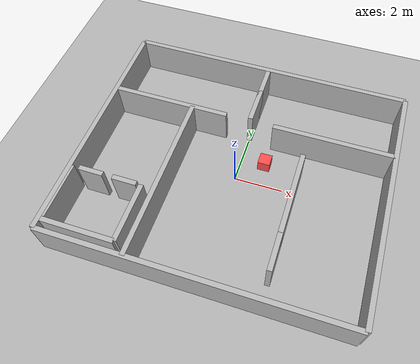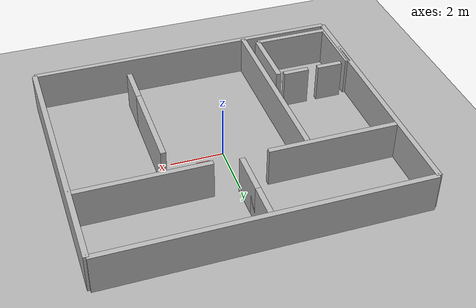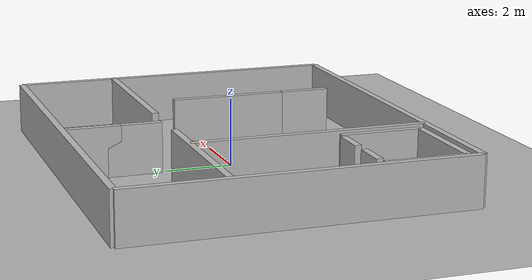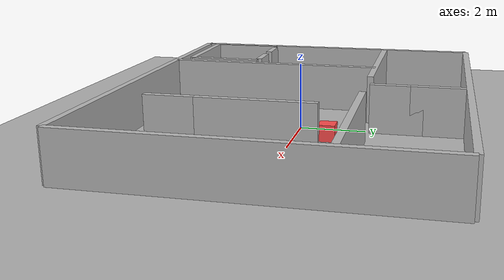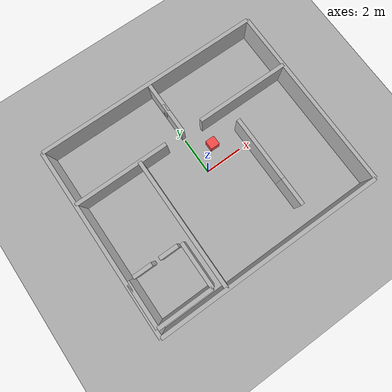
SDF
<?xml version="1.0" ?>
<sdf version="1.7">
  <world name="nav_world">

    <physics name='1ms' type='ignored'>
      <max_step_size>0.001</max_step_size>
      <real_time_factor>1</real_time_factor>
    </physics>

    <plugin
        filename="ignition-gazebo-physics-system"
        name="ignition::gazebo::systems::Physics">
    </plugin>
    <plugin
        filename="ignition-gazebo-user-commands-system"
        name="ignition::gazebo::systems::UserCommands">
    </plugin>
    <plugin
        filename="ignition-gazebo-scene-broadcaster-system"
        name="ignition::gazebo::systems::SceneBroadcaster">
    </plugin>
    <plugin
        filename="ignition-gazebo-sensors-system"
        name="ignition::gazebo::systems::Sensors">
        <render_engine>ogre2</render_engine>
    </plugin>
    <plugin
        filename="ignition-gazebo-contact-system"
        name="ignition::gazebo::systems::Contact">
    </plugin>
    <plugin filename="gz-sim-imu-system"
            name="gz::sim::systems::Imu">
    </plugin>

    <!-- 基本光源 -->
    <light name="sun" type="directional">
      <cast_shadows>true</cast_shadows>
      <pose>0 0 10 0 0 0</pose>
      <diffuse>1 1 1 1</diffuse>
      <specular>0.1 0.1 0.1 1</specular>
      <direction>-0.5 0.5 -1</direction>
    </light>

    <!-- 地面（自定义 plane，非 Fuel） -->
    <model name="ground_plane">
      <static>true</static>
      <link name="ground_link">
        <collision name="ground_collision">
          <geometry>
            <plane>
              <normal>0 0 1</normal>
              <size>20 20</size>
            </plane>
          </geometry>
        </collision>
        <visual name="ground_visual">
          <geometry>
            <plane>
              <normal>0 0 1</normal>
              <size>20 20</size>
            </plane>
          </geometry>
          <material>
            <ambient>0.5 0.5 0.5 1</ambient>
            <diffuse>0.7 0.7 0.7 1</diffuse>
          </material>
        </visual>
      </link>
    </model>

    <!-- 多房间布局（外墙 12x10，墙厚0.2，高1.5） -->
    <model name="complex_rooms_v3">
      <static>true</static>

      <!-- 外墙 -->
      <link name="outer_east">
        <pose>6 0 0.75 0 0 0</pose>
        <collision name="c"><geometry><box><size>0.2 10 1.5</size></box></geometry></collision>
        <visual name="v"><geometry><box><size>0.2 10 1.5</size></box></geometry></visual>
      </link>
      <link name="outer_west">
        <pose>-6 0 0.75 0 0 0</pose>
        <collision name="c"><geometry><box><size>0.2 10 1.5</size></box></geometry></collision>
        <visual name="v"><geometry><box><size>0.2 10 1.5</size></box></geometry></visual>
      </link>
      <link name="outer_north">
        <pose>0 5 0.75 0 0 0</pose>
        <collision name="c"><geometry><box><size>12 0.2 1.5</size></box></geometry></collision>
        <visual name="v"><geometry><box><size>12 0.2 1.5</size></box></geometry></visual>
      </link>
      <link name="outer_south">
        <pose>0 -5 0.75 0 0 0</pose>
        <collision name="c"><geometry><box><size>12 0.2 1.5</size></box></geometry></collision>
        <visual name="v"><geometry><box><size>12 0.2 1.5</size></box></geometry></visual>
      </link>

      <!-- 横墙（y=2，留 2m 门洞，形成北侧大房） -->
      <link name="h_y2_left">
        <pose>-3.5 2 0.75 0 0 0</pose>
        <collision name="c"><geometry><box><size>5 0.2 1.5</size></box></geometry></collision>
        <visual name="v"><geometry><box><size>5 0.2 1.5</size></box></geometry></visual>
      </link>
      <link name="h_y2_right">
        <pose>3.5 2 0.75 0 0 0</pose>
        <collision name="c"><geometry><box><size>5 0.2 1.5</size></box></geometry></collision>
        <visual name="v"><geometry><box><size>5 0.2 1.5</size></box></geometry></visual>
      </link>

      <!-- 右侧纵墙（x=2.5），把南侧分成东/西两区；在 y∈[-2.5,-1.5] 留 1m 门 -->
      <link name="v_x2p5_low">
        <pose>2.5 -3.25 0.75 0 0 0</pose>
        <collision name="c"><geometry><box><size>0.2 1.5 1.5</size></box></geometry></collision>
        <visual name="v"><geometry><box><size>0.2 1.5 1.5</size></box></geometry></visual>
      </link>
      <link name="v_x2p5_high">
        <pose>2.5 -0.75 0.75 0 0 0</pose>
        <collision name="c"><geometry><box><size>0.2 3.5 1.5</size></box></geometry></collision>
        <visual name="v"><geometry><box><size>0.2 3.5 1.5</size></box></geometry></visual>
      </link>

      <!-- 左侧纵墙（x=-2.5），把南侧西区与中心走廊隔开 -->
      <link name="v_x-2p5_full">
        <pose>-2.5 -1.5 0.75 0 0 0</pose>
        <collision name="c"><geometry><box><size>0.2 7 1.5</size></box></geometry></collision>
        <visual name="v"><geometry><box><size>0.2 7 1.5</size></box></geometry></visual>
      </link>

      <!-- 西南角小房间（约 2.6x2.6），门开在北边（y=-2.2）留 0.8m 缝 -->
      <!-- 小房北墙分两段留门 -->
      <link name="h_sw_top_left">
        <pose>-5.1 -2.2 0.75 0 0 0</pose>
        <collision name="c"><geometry><box><size>1.0 0.2 1.5</size></box></geometry></collision>
        <visual name="v"><geometry><box><size>1.0 0.2 1.5</size></box></geometry></visual>
      </link>
      <link name="h_sw_top_right">
        <pose>-3.7 -2.2 0.75 0 0 0</pose>
        <collision name="c"><geometry><box><size>1.0 0.2 1.5</size></box></geometry></collision>
        <visual name="v"><geometry><box><size>1.0 0.2 1.5</size></box></geometry></visual>
      </link>
      <!-- 小房西墙（靠外墙，略内缩，避免与外墙重合） -->
      <link name="v_sw_west">
        <pose>-5.9 -3.4 0.75 0 0 0</pose>
        <collision name="c"><geometry><box><size>0.2 2.4 1.5</size></box></geometry></collision>
        <visual name="v"><geometry><box><size>0.2 2.4 1.5</size></box></geometry></visual>
      </link>
      <!-- 小房东墙 -->
      <link name="v_sw_east">
        <pose>-3.0 -3.4 0.75 0 0 0</pose>
        <collision name="c"><geometry><box><size>0.2 2.4 1.5</size></box></geometry></collision>
        <visual name="v"><geometry><box><size>0.2 2.4 1.5</size></box></geometry></visual>
      </link>
      <!-- 小房南墙 -->
      <link name="h_sw_south">
        <pose>-4.45 -4.6 0.75 0 0 0</pose>
        <collision name="c"><geometry><box><size>2.9 0.2 1.5</size></box></geometry></collision>
        <visual name="v"><geometry><box><size>2.9 0.2 1.5</size></box></geometry></visual>
      </link>

      <!-- 北房再加一堵纵墙（x=0），在 y∈[2.0,5.0] 中间，分成左右两间大房，门开在 y=3.2 处留 1m -->
      <link name="v_mid_north_top">
        <pose>0 4.1 0.75 0 0 0</pose>
        <collision name="c"><geometry><box><size>0.2 1.6 1.5</size></box></geometry></collision>
        <visual name="v"><geometry><box><size>0.2 1.6 1.5</size></box></geometry></visual>
      </link>
      <link name="v_mid_north_bot">
        <pose>0 2.9 0.75 0 0 0</pose>
        <collision name="c"><geometry><box><size>0.2 1.6 1.5</size></box></geometry></collision>
        <visual name="v"><geometry><box><size>0.2 1.6 1.5</size></box></geometry></visual>
      </link>
    </model>

    <!-- 障碍 -->
    <model name="box_obstacle">
      <pose>1 1 0.25 0 0 0</pose>
      <static>true</static>
      <link name="link">
        <collision name="collision">
          <geometry>
            <box><size>0.5 0.5 0.5</size></box>
          </geometry>
        </collision>
        <visual name="visual">
          <geometry>
            <box><size>0.5 0.5 0.5</size></box>
          </geometry>
          <material>
            <ambient>1 0.3 0.3 1</ambient>
          </material>
        </visual>
      </link>
    </model>

    <!-- 机器人出生点 -->
    <model name="robot_spawn">
      <pose>0 0 0.01 0 0 0</pose>
      <static>true</static>
      <link name="spawn_link">
        <visual name="dummy">
          <geometry><box><size>0.001 0.001 0.001</size></box></geometry>
        </visual>
      </link>
    </model>

  </world>
</sdf>
